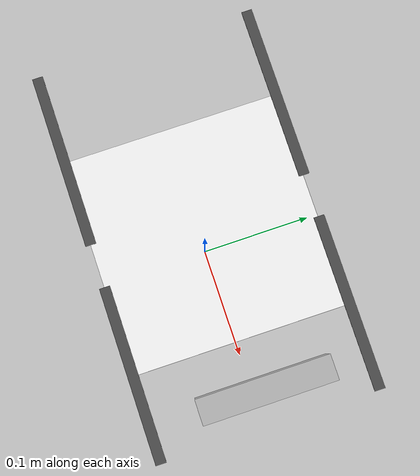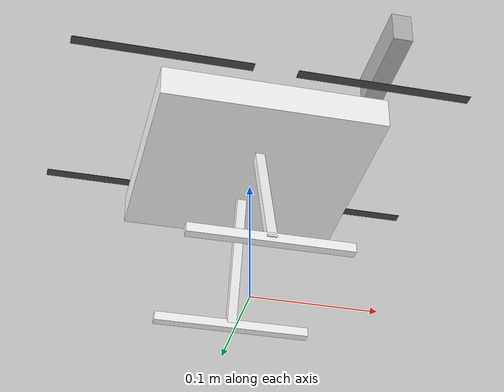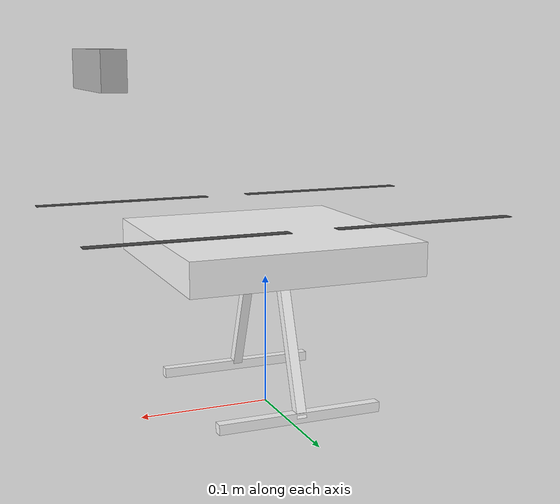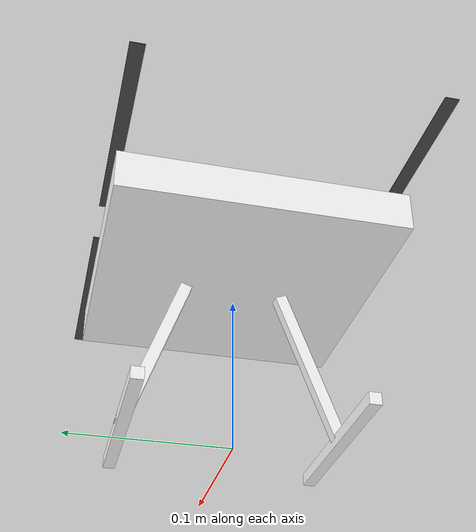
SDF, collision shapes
<?xml version="1.0" encoding="UTF-8"?>
<sdf version='1.9'>
  <model name='x500_depth'>
    <include merge='true'>
      <uri>model://x500</uri>
    </include>
    <include merge='true'>
      <uri>model://OakD-Lite</uri>
      <pose>.12 .03 .242 0 0 0</pose>
    </include>
    <joint name="CameraJoint" type="fixed">
      <parent>base_link</parent>
      <child>camera_link</child>
      <pose relative_to="base_link">.12 .03 .242 0 0 0</pose>
    </joint>

    <!-- Pose Publisher Plugin - Publishes TF transforms -->
    <plugin filename="gz-sim-pose-publisher-system" name="gz::sim::systems::PosePublisher">
      <publish_link_pose>true</publish_link_pose>
      <publish_sensor_pose>true</publish_sensor_pose>
      <publish_collision_pose>false</publish_collision_pose>
      <publish_visual_pose>false</publish_visual_pose>
      <publish_nested_model_pose>true</publish_nested_model_pose>
      <use_pose_vector_msg>true</use_pose_vector_msg>
      <update_frequency>30</update_frequency>
    </plugin>

    <!-- Joint State Publisher Plugin - Publishes joint states -->
    <plugin filename="gz-sim-joint-state-publisher-system" name="gz::sim::systems::JointStatePublisher">
      <joint_name>rotor_0_joint</joint_name>
      <joint_name>rotor_1_joint</joint_name>
      <joint_name>rotor_2_joint</joint_name>
      <joint_name>rotor_3_joint</joint_name>
      <joint_name>CameraJoint</joint_name>
      <update_rate>30</update_rate>
    </plugin>

    <!-- Odometry Publisher Plugin - Publishes odometry and gazebo_odom->base_link TF -->
    <!-- Note: Frame renamed to 'gazebo_odom' to avoid conflicts with RTAB-Map's 'odom' frame -->
    <!-- RTAB-Map publishes map->odom (visual SLAM), Gazebo publishes gazebo_odom->base_link (simulation odometry) -->
    <plugin filename="gz-sim-odometry-publisher-system" name="gz::sim::systems::OdometryPublisher">
      <odom_frame>gazebo_odom</odom_frame>
      <robot_base_frame>base_link</robot_base_frame>
      <publish_odom_tf>true</publish_odom_tf>
      <odom_publish_frequency>30</odom_publish_frequency>
      <odom_topic>odom</odom_topic>
      <tf_topic>tf</tf_topic>
      <dimensions>3</dimensions>
    </plugin>
  </model>
</sdf>

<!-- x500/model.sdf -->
<sdf version='1.9'>
  <model name='x500'>
    <include merge='true'>
      <uri>model://x500_base</uri>
    </include>
    <plugin filename="gz-sim-multicopter-motor-model-system"
      name="gz::sim::systems::MulticopterMotorModel">
      <jointName>rotor_0_joint</jointName>
      <linkName>rotor_0</linkName>
      <turningDirection>ccw</turningDirection>
      <timeConstantUp>0.0125</timeConstantUp>
      <timeConstantDown>0.025</timeConstantDown>
      <maxRotVelocity>1000.0</maxRotVelocity>
      <motorConstant>8.54858e-06</motorConstant>
      <momentConstant>0.016</momentConstant>
      <commandSubTopic>command/motor_speed</commandSubTopic>
      <motorNumber>0</motorNumber>
      <rotorDragCoefficient>8.06428e-05</rotorDragCoefficient>
      <rollingMomentCoefficient>1e-06</rollingMomentCoefficient>
      <rotorVelocitySlowdownSim>10</rotorVelocitySlowdownSim>
      <motorType>velocity</motorType>
    </plugin>
    <plugin filename="gz-sim-multicopter-motor-model-system"
      name="gz::sim::systems::MulticopterMotorModel">
      <jointName>rotor_1_joint</jointName>
      <linkName>rotor_1</linkName>
      <turningDirection>ccw</turningDirection>
      <timeConstantUp>0.0125</timeConstantUp>
      <timeConstantDown>0.025</timeConstantDown>
      <maxRotVelocity>1000.0</maxRotVelocity>
      <motorConstant>8.54858e-06</motorConstant>
      <momentConstant>0.016</momentConstant>
      <commandSubTopic>command/motor_speed</commandSubTopic>
      <motorNumber>1</motorNumber>
      <rotorDragCoefficient>8.06428e-05</rotorDragCoefficient>
      <rollingMomentCoefficient>1e-06</rollingMomentCoefficient>
      <rotorVelocitySlowdownSim>10</rotorVelocitySlowdownSim>
      <motorType>velocity</motorType>
    </plugin>
    <plugin filename="gz-sim-multicopter-motor-model-system"
      name="gz::sim::systems::MulticopterMotorModel">
      <jointName>rotor_2_joint</jointName>
      <linkName>rotor_2</linkName>
      <turningDirection>cw</turningDirection>
      <timeConstantUp>0.0125</timeConstantUp>
      <timeConstantDown>0.025</timeConstantDown>
      <maxRotVelocity>1000.0</maxRotVelocity>
      <motorConstant>8.54858e-06</motorConstant>
      <momentConstant>0.016</momentConstant>
      <commandSubTopic>command/motor_speed</commandSubTopic>
      <motorNumber>2</motorNumber>
      <rotorDragCoefficient>8.06428e-05</rotorDragCoefficient>
      <rollingMomentCoefficient>1e-06</rollingMomentCoefficient>
      <rotorVelocitySlowdownSim>10</rotorVelocitySlowdownSim>
      <motorType>velocity</motorType>
    </plugin>
    <plugin filename="gz-sim-multicopter-motor-model-system"
      name="gz::sim::systems::MulticopterMotorModel">
      <jointName>rotor_3_joint</jointName>
      <linkName>rotor_3</linkName>
      <turningDirection>cw</turningDirection>
      <timeConstantUp>0.0125</timeConstantUp>
      <timeConstantDown>0.025</timeConstantDown>
      <maxRotVelocity>1000.0</maxRotVelocity>
      <motorConstant>8.54858e-06</motorConstant>
      <momentConstant>0.016</momentConstant>
      <commandSubTopic>command/motor_speed</commandSubTopic>
      <motorNumber>3</motorNumber>
      <rotorDragCoefficient>8.06428e-05</rotorDragCoefficient>
      <rollingMomentCoefficient>1e-06</rollingMomentCoefficient>
      <rotorVelocitySlowdownSim>10</rotorVelocitySlowdownSim>
      <motorType>velocity</motorType>
    </plugin>

    <!-- Multicopter Velocity Controller - Enables Twist velocity commands -->
    <plugin filename="gz-sim-multicopter-control-system"
      name="gz::sim::systems::MulticopterVelocityControl">
      <robotNamespace>x500_depth</robotNamespace>
      <commandSubTopic>cmd_vel</commandSubTopic>
      <enableSubTopic>enable</enableSubTopic>
      <comLinkName>base_link</comLinkName>
      <velocityGain>5.0 5.0 2.7</velocityGain>
      <attitudeGain>3.0 4.0 0.15</attitudeGain>
      <angularRateGain>0.5 0.7 0.18</angularRateGain>
      <maximumLinearAcceleration>3 3 2</maximumLinearAcceleration>
      <maximumLinearVelocity>5 5 5</maximumLinearVelocity>
      <maximumAngularVelocity>3 3 3</maximumAngularVelocity>
      <linearVelocityNoiseMean>0 0 0</linearVelocityNoiseMean>
      <linearVelocityNoiseStdDev>0 0 0</linearVelocityNoiseStdDev>
      <angularVelocityNoiseMean>0 0 0</angularVelocityNoiseMean>
      <angularVelocityNoiseStdDev>0 0 0</angularVelocityNoiseStdDev>
      <rotorConfiguration>
        <rotor>
          <jointName>rotor_0_joint</jointName>
          <forceConstant>8.54858e-06</forceConstant>
          <momentConstant>0.016</momentConstant>
          <direction>1</direction>
        </rotor>
        <rotor>
          <jointName>rotor_1_joint</jointName>
          <forceConstant>8.54858e-06</forceConstant>
          <momentConstant>0.016</momentConstant>
          <direction>1</direction>
        </rotor>
        <rotor>
          <jointName>rotor_2_joint</jointName>
          <forceConstant>8.54858e-06</forceConstant>
          <momentConstant>0.016</momentConstant>
          <direction>-1</direction>
        </rotor>
        <rotor>
          <jointName>rotor_3_joint</jointName>
          <forceConstant>8.54858e-06</forceConstant>
          <momentConstant>0.016</momentConstant>
          <direction>-1</direction>
        </rotor>
      </rotorConfiguration>
    </plugin>
  </model>
</sdf>

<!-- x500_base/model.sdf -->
<sdf version='1.9'>
  <model name='x500_base'>
    <pose>0 0 0.12 0 0 0</pose>
    <self_collide>false</self_collide>
    <static>false</static>
    <link name="base_link">
      <inertial>
        <mass>1.0</mass>
        <inertia>
          <ixx>0.005416666666666667</ixx>
          <ixy>0</ixy>
          <ixz>0</ixz>
          <iyy>0.005416666666666667</iyy>
          <iyz>0</iyz>
          <izz>0.010000000000000002</izz>
        </inertia>
      </inertial>
      <gravity>true</gravity>
      <velocity_decay/>
      <visual name="base_link_visual">
        <pose>0 0 0.0125 0 0 3.141592654</pose>
        <geometry>
          <mesh>
            <scale>0.5 0.5 0.5</scale>
            <uri>model://x500_base/meshes/NXP-HGD-CF.dae</uri>
          </mesh>
        </geometry>
      </visual>
      <visual name="5010_motor_base_0">
        <pose>0.087 0.087 0.016 0 0 -0.45</pose>
        <geometry>
          <mesh>
            <scale>0.5 0.5 0.5</scale>
            <uri>model://x500_base/meshes/5010Base.dae</uri>
          </mesh>
        </geometry>
      </visual>
      <visual name="5010_motor_base_1">
        <pose>-0.087 0.087 0.016 0 0 -0.45</pose>
        <geometry>
          <mesh>
            <scale>0.5 0.5 0.5</scale>
            <uri>model://x500_base/meshes/5010Base.dae</uri>
          </mesh>
        </geometry>
      </visual>
      <visual name="5010_motor_base_2">
        <pose>0.087 -0.087 0.016 0 0 -0.45</pose>
        <geometry>
          <mesh>
            <scale>0.5 0.5 0.5</scale>
            <uri>model://x500_base/meshes/5010Base.dae</uri>
          </mesh>
        </geometry>
      </visual>
      <visual name="5010_motor_base_3">
        <pose>-0.087 -0.087 0.016 0 0 -0.45</pose>
        <geometry>
          <mesh>
            <scale>0.5 0.5 0.5</scale>
            <uri>model://x500_base/meshes/5010Base.dae</uri>
          </mesh>
        </geometry>
      </visual>
      <visual name="NXP_FMUK66_FRONT">
        <pose>0.0235 0.0005 0.0215 1 0 1.57</pose>
        <cast_shadows>false</cast_shadows>
        <geometry>
          <plane>
            <normal>0 0 1</normal>
            <size>0.0065 0.0035</size>
          </plane>
        </geometry>
        <material>
          <diffuse>1.0 1.0 1.0</diffuse>
          <specular>1.0 1.0 1.0</specular>
          <pbr>
            <metal>
              <albedo_map>model://x500_base/materials/textures/nxp.png</albedo_map>
            </metal>
          </pbr>
        </material>
      </visual>
      <visual name="NXP_FMUK66_TOP">
        <pose>-0.0115 0 0.02575 0 0 -1.57</pose>
        <cast_shadows>false</cast_shadows>
        <geometry>
          <plane>
            <normal>0 0 1</normal>
            <size>0.0065 0.0035</size>
          </plane>
        </geometry>
        <material>
          <diffuse>1.0 1.0 1.0</diffuse>
          <specular>1.0 1.0 1.0</specular>
          <pbr>
            <metal>
              <albedo_map>model://x500_base/materials/textures/nxp.png</albedo_map>
            </metal>
          </pbr>
        </material>
      </visual>
      <visual name="RDDRONE_FMUK66_TOP">
        <pose>-0.015 0 0.02575 0 0 -1.57</pose>
        <cast_shadows>false</cast_shadows>
        <geometry>
          <plane>
            <normal>0 0 1</normal>
            <size>0.016 0.0017</size>
          </plane>
        </geometry>
        <material>
          <diffuse>1.0 1.0 1.0</diffuse>
          <specular>1.0 1.0 1.0</specular>
          <pbr>
            <metal>
              <albedo_map>model://x500_base/materials/textures/rd.png</albedo_map>
            </metal>
          </pbr>
        </material>
      </visual>
      <collision name="base_link_collision_0">
        <pose>0 0 0.0035 0 0 0</pose>
        <geometry>
          <box>
            <size>0.17677669529663686 0.17677669529663686 0.025</size>
          </box>
        </geometry>
        <surface>
          <contact>
            <ode>
              <min_depth>0.001</min_depth>
              <max_vel>0</max_vel>
            </ode>
          </contact>
          <friction>
            <ode/>
          </friction>
        </surface>
      </collision>
      <collision name="base_link_collision_1">
        <pose>0 -0.049 -0.0615 -0.35 0 0</pose>
        <geometry>
          <box>
            <size>0.0075 0.0075 0.105</size>
          </box>
        </geometry>
        <surface>
          <contact>
            <ode>
              <min_depth>0.001</min_depth>
              <max_vel>0</max_vel>
            </ode>
          </contact>
          <friction>
            <ode/>
          </friction>
        </surface>
      </collision>
      <collision name="base_link_collision_2">
        <pose>0 0.049 -0.0615 0.35 0 0</pose>
        <geometry>
          <box>
            <size>0.0075 0.0075 0.105</size>
          </box>
        </geometry>
        <surface>
          <contact>
            <ode>
              <min_depth>0.001</min_depth>
              <max_vel>0</max_vel>
            </ode>
          </contact>
          <friction>
            <ode/>
          </friction>
        </surface>
      </collision>
      <collision name="base_link_collision_3">
        <pose>0 -0.066 -0.10975 0 0 0</pose>
        <geometry>
          <box>
            <size>0.125 0.0075 0.0075</size>
          </box>
        </geometry>
        <surface>
          <contact>
            <ode>
              <min_depth>0.001</min_depth>
              <max_vel>0</max_vel>
            </ode>
          </contact>
          <friction>
            <ode/>
          </friction>
        </surface>
      </collision>
      <collision name="base_link_collision_4">
        <pose>0 0.066 -0.10975 0 0 0</pose>
        <geometry>
          <box>
            <size>0.125 0.0075 0.0075</size>
          </box>
        </geometry>
        <surface>
          <contact>
            <ode>
              <min_depth>0.001</min_depth>
              <max_vel>0</max_vel>
            </ode>
          </contact>
          <friction>
            <ode/>
          </friction>
        </surface>
      </collision>
      <sensor name="air_pressure_sensor" type="air_pressure">
        <always_on>1</always_on>
        <update_rate>50</update_rate>
        <air_pressure>
          <pressure>
            <noise type="gaussian">
              <mean>0</mean>
              <stddev>0.01</stddev>
            </noise>
          </pressure>
        </air_pressure>
      </sensor>
      <sensor name="imu_sensor" type="imu">
        <always_on>1</always_on>
        <update_rate>250</update_rate>
        <imu>
          <angular_velocity>
            <x>
              <noise type="gaussian">
                <mean>0</mean>
                <stddev>0.00018665</stddev>
                <dynamic_bias_stddev>3.8785e-05</dynamic_bias_stddev>
                <dynamic_bias_correlation_time>1000</dynamic_bias_correlation_time>
              </noise>
            </x>
            <y>
              <noise type="gaussian">
                <mean>0</mean>
                <stddev>0.00018665</stddev>
                <dynamic_bias_stddev>3.8785e-05</dynamic_bias_stddev>
                <dynamic_bias_correlation_time>1000</dynamic_bias_correlation_time>
              </noise>
            </y>
            <z>
              <noise type="gaussian">
                <mean>0</mean>
                <stddev>0.00018665</stddev>
                <dynamic_bias_stddev>3.8785e-05</dynamic_bias_stddev>
                <dynamic_bias_correlation_time>1000</dynamic_bias_correlation_time>
              </noise>
            </z>
          </angular_velocity>
          <linear_acceleration>
            <x>
              <noise type="gaussian">
                <mean>0</mean>
                <stddev>0.00186</stddev>
                <dynamic_bias_stddev>0.006</dynamic_bias_stddev>
                <dynamic_bias_correlation_time>300</dynamic_bias_correlation_time>
              </noise>
            </x>
            <y>
              <noise type="gaussian">
                <mean>0</mean>
                <stddev>0.00186</stddev>
                <dynamic_bias_stddev>0.006</dynamic_bias_stddev>
                <dynamic_bias_correlation_time>300</dynamic_bias_correlation_time>
              </noise>
            </y>
            <z>
              <noise type="gaussian">
                <mean>0</mean>
                <stddev>0.00186</stddev>
                <dynamic_bias_stddev>0.006</dynamic_bias_stddev>
                <dynamic_bias_correlation_time>300</dynamic_bias_correlation_time>
              </noise>
            </z>
          </linear_acceleration>
        </imu>
      </sensor>
      <sensor name="navsat_sensor" type="navsat">
        <always_on>1</always_on>
        <update_rate>30</update_rate>
      </sensor>
    </link>
    <link name="rotor_0">
      <gravity>true</gravity>
      <self_collide>false</self_collide>
      <velocity_decay/>
      <pose>0.087 -0.087 0.03 0 0 0</pose>
      <inertial>
          <mass>0.008038461538461538</mass>
          <inertia>
            <ixx>9.616227620998331e-08</ixx>
            <iyy>6.528962922925001e-06</iyy>
            <izz>6.62464558678501e-06</izz>
          </inertia>
        </inertial>
      <visual name="rotor_0_visual">
        <pose>-0.011 -0.07319230769230769 -0.008 0 0 0</pose>
        <geometry>
          <mesh>
            <scale>0.4230769230769231 0.4230769230769231 0.4230769230769231</scale>
            <uri>model://x500_base/meshes/1345_prop_ccw.stl</uri>
          </mesh>
        </geometry>
        <material>
          <script>
            <name>Gazebo/DarkGrey</name>
            <uri>file://media/materials/scripts/gazebo.material</uri>
          </script>
        </material>
      </visual>
      <visual name="rotor_0_visual_motor_bell">
        <pose>0 0 -0.016 0 0 0</pose>
        <geometry>
          <mesh>
            <scale>0.5 0.5 0.5</scale>
            <uri>model://x500_base/meshes/5010Bell.dae</uri>
          </mesh>
        </geometry>
      </visual>
      <collision name="rotor_0_collision">
        <pose>0 0 0 0 0 0 </pose>
        <geometry>
          <box>
            <size>0.1396153846153846 0.008461538461538461 0.0004230769230769231</size>
          </box>
        </geometry>
        <surface>
          <contact>
            <ode>
              <min_depth>0.001</min_depth>
              <max_vel>0</max_vel>
            </ode>
          </contact>
          <friction>
            <ode/>
          </friction>
        </surface>
      </collision>
    </link>
    <joint name="rotor_0_joint" type="revolute">
      <parent>base_link</parent>
      <child>rotor_0</child>
      <axis>
        <xyz>0 0 1</xyz>
        <limit>
          <lower>-1e+16</lower>
          <upper>1e+16</upper>
        </limit>
        <dynamics>
          <spring_reference>0</spring_reference>
          <spring_stiffness>0</spring_stiffness>
        </dynamics>
      </axis>
    </joint>
    <link name="rotor_1">
      <gravity>true</gravity>
      <self_collide>false</self_collide>
      <velocity_decay/>
      <pose>-0.087 0.087 0.03 0 0 0</pose>
      <inertial>
          <mass>0.008038461538461538</mass>
          <inertia>
            <ixx>9.616227620998331e-08</ixx>
            <iyy>6.528962922925001e-06</iyy>
            <izz>6.62464558678501e-06</izz>
          </inertia>
        </inertial>
      <visual name="rotor_1_visual">
        <pose>-0.011 -0.07319230769230769 -0.008 0 0 0</pose>
        <geometry>
          <mesh>
            <scale>0.4230769230769231 0.4230769230769231 0.4230769230769231</scale>
            <uri>model://x500_base/meshes/1345_prop_ccw.stl</uri>
          </mesh>
        </geometry>
        <material>
          <script>
            <name>Gazebo/DarkGrey</name>
            <uri>file://media/materials/scripts/gazebo.material</uri>
          </script>
        </material>
      </visual>
      <visual name="rotor_1_visual_motor_top">
        <pose>0 0 -0.016 0 0 0</pose>
        <geometry>
          <mesh>
            <scale>0.5 0.5 0.5</scale>
            <uri>model://x500_base/meshes/5010Bell.dae</uri>
          </mesh>
        </geometry>
      </visual>
      <collision name="rotor_1_collision">
        <pose>0 0 0 0 0 0 </pose>
        <geometry>
          <box>
            <size>0.1396153846153846 0.008461538461538461 0.0004230769230769231</size>
          </box>
        </geometry>
        <surface>
          <contact>
            <ode>
              <min_depth>0.001</min_depth>
              <max_vel>0</max_vel>
            </ode>
          </contact>
          <friction>
            <ode/>
          </friction>
        </surface>
      </collision>
    </link>
    <joint name="rotor_1_joint" type="revolute">
      <parent>base_link</parent>
      <child>rotor_1</child>
      <axis>
        <xyz>0 0 1</xyz>
        <limit>
          <lower>-1e+16</lower>
          <upper>1e+16</upper>
        </limit>
        <dynamics>
          <spring_reference>0</spring_reference>
          <spring_stiffness>0</spring_stiffness>
        </dynamics>
      </axis>
    </joint>
    <link name="rotor_2">
      <gravity>true</gravity>
      <self_collide>false</self_collide>
      <velocity_decay/>
      <pose>0.087 0.087 0.03 0 0 0</pose>
      <inertial>
          <mass>0.008038461538461538</mass>
          <inertia>
            <ixx>9.616227620998331e-08</ixx>
            <iyy>6.528962922925001e-06</iyy>
            <izz>6.62464558678501e-06</izz>
          </inertia>
        </inertial>
      <visual name="rotor_2_visual">
        <pose>-0.011 -0.07319230769230769 -0.008 0 0 0</pose>
        <geometry>
          <mesh>
            <scale>0.4230769230769231 0.4230769230769231 0.4230769230769231</scale>
            <uri>model://x500_base/meshes/1345_prop_cw.stl</uri>
          </mesh>
        </geometry>
        <material>
          <script>
            <name>Gazebo/DarkGrey</name>
            <uri>file://media/materials/scripts/gazebo.material</uri>
          </script>
        </material>
      </visual>
      <visual name="rotor_2_visual_motor_top">
        <pose>0 0 -0.016 0 0 0</pose>
        <geometry>
          <mesh>
            <scale>0.5 0.5 0.5</scale>
            <uri>model://x500_base/meshes/5010Bell.dae</uri>
          </mesh>
        </geometry>
      </visual>
      <collision name="rotor_2_collision">
        <pose>0 0 0 0 0 0 </pose>
        <geometry>
          <box>
            <size>0.1396153846153846 0.008461538461538461 0.0004230769230769231</size>
          </box>
        </geometry>
        <surface>
          <contact>
            <ode>
              <min_depth>0.001</min_depth>
              <max_vel>0</max_vel>
            </ode>
          </contact>
          <friction>
            <ode/>
          </friction>
        </surface>
      </collision>
    </link>
    <joint name="rotor_2_joint" type="revolute">
      <parent>base_link</parent>
      <child>rotor_2</child>
      <axis>
        <xyz>0 0 1</xyz>
        <limit>
          <lower>-1e+16</lower>
          <upper>1e+16</upper>
        </limit>
        <dynamics>
          <spring_reference>0</spring_reference>
          <spring_stiffness>0</spring_stiffness>
        </dynamics>
      </axis>
    </joint>
    <link name="rotor_3">
      <gravity>true</gravity>
      <self_collide>false</self_collide>
      <velocity_decay/>
      <pose>-0.087 -0.087 0.03 0 0 0</pose>
      <inertial>
          <mass>0.008038461538461538</mass>
          <inertia>
            <ixx>9.616227620998331e-08</ixx>
            <iyy>6.528962922925001e-06</iyy>
            <izz>6.62464558678501e-06</izz>
          </inertia>
        </inertial>
      <visual name="rotor_3_visual">
        <pose>-0.011 -0.07319230769230769 -0.008 0 0 0</pose>
        <geometry>
          <mesh>
            <scale>0.4230769230769231 0.4230769230769231 0.4230769230769231</scale>
            <uri>model://x500_base/meshes/1345_prop_cw.stl</uri>
          </mesh>
        </geometry>
        <material>
          <script>
            <name>Gazebo/DarkGrey</name>
            <uri>file://media/materials/scripts/gazebo.material</uri>
          </script>
        </material>
      </visual>
      <visual name="rotor_3_visual_motor_top">
        <pose>0 0 -0.016 0 0 0</pose>
        <geometry>
          <mesh>
            <scale>0.5 0.5 0.5</scale>
            <uri>model://x500_base/meshes/5010Bell.dae</uri>
          </mesh>
        </geometry>
      </visual>
      <collision name="rotor_3_collision">
        <pose>0 0 0 0 0 0 </pose>
        <geometry>
          <box>
            <size>0.1396153846153846 0.008461538461538461 0.0004230769230769231</size>
          </box>
        </geometry>
        <surface>
          <contact>
            <ode>
              <min_depth>0.001</min_depth>
              <max_vel>0</max_vel>
            </ode>
          </contact>
          <friction>
            <ode/>
          </friction>
        </surface>
      </collision>
    </link>
    <joint name="rotor_3_joint" type="revolute">
      <parent>base_link</parent>
      <child>rotor_3</child>
      <axis>
        <xyz>0 0 1</xyz>
        <limit>
          <lower>-1e+16</lower>
          <upper>1e+16</upper>
        </limit>
        <dynamics>
          <spring_reference>0</spring_reference>
          <spring_stiffness>0</spring_stiffness>
        </dynamics>
      </axis>
    </joint>
  </model>
</sdf>

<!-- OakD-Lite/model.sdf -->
<sdf version='1.9'>
  <model name='OakD-Lite'>
    <pose>0 0 0 0 0 0</pose>
    <self_collide>false</self_collide>
    <static>false</static>
    <link name="camera_link">
      <inertial>
        <pose>0.00358 -0.03 .014 0 0 0</pose>
        <mass>0.061</mass>
        <inertia>
          <ixx>0.0000460804</ixx>
          <ixy>0</ixy>
          <ixz>0</ixz>
          <iyy>0.0000055421</iyy>
          <iyz>0</iyz>
          <izz>0.0000436519</izz>
        </inertia>
      </inertial>
      <visual name="OakD-Lite/visual">
        <pose>0 0 0 0 0 0</pose>
        <geometry>
          <mesh>
            <scale>1 1 1</scale>
            <uri>model://OakD-Lite/meshes/OakDLite.dae</uri>
          </mesh>
        </geometry>
      </visual>
      <collision name="OakD-Lite/collision">
        <pose>0.00358 -0.03 .014 0 0 0</pose>
        <geometry>
          <box>
            <size>0.0175 0.091 0.028</size>
          </box>
        </geometry>
      </collision>
      <sensor name="IMX214" type="camera">
        <gz_frame_id>camera_link</gz_frame_id>
        <pose>0.01233 -0.03 .01878 0 0 0</pose>
        <camera>
          <horizontal_fov>1.204</horizontal_fov>
          <image>
            <width>640</width>
            <height>480</height>
          </image>
          <clip>
            <near>0.1</near>
            <far>100</far>
          </clip>
        </camera>
        <always_on>1</always_on>
        <update_rate>30</update_rate>
        <visualize>true</visualize>
      </sensor>
      <sensor name="StereoOV7251" type="rgbd_camera">
        <gz_frame_id>camera_link</gz_frame_id>
        <pose>0.01233 -0.03 .01878 0 0 0</pose>
        <camera>
          <horizontal_fov>1.274</horizontal_fov>
          <image>
            <width>640</width>
            <height>480</height>
          </image>
          <depth_camera>
            <clip>
              <near>0.2</near>
              <far>19.1</far>
            </clip>
          </depth_camera>
          <clip>
            <near>0.2</near>
            <far>19.1</far>
          </clip>
        </camera>
        <always_on>1</always_on>
        <update_rate>30</update_rate>
        <visualize>true</visualize>
      </sensor>
      <gravity>true</gravity>
      <velocity_decay />
    </link>
  </model>
</sdf>
